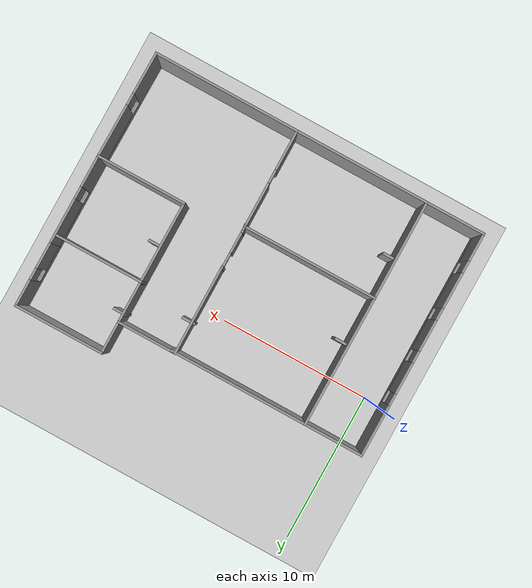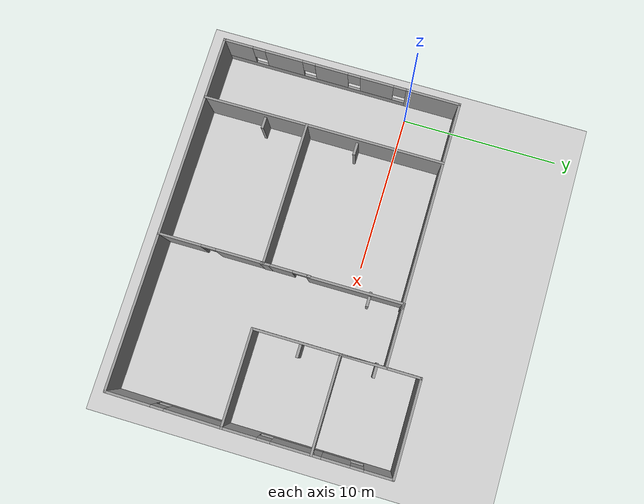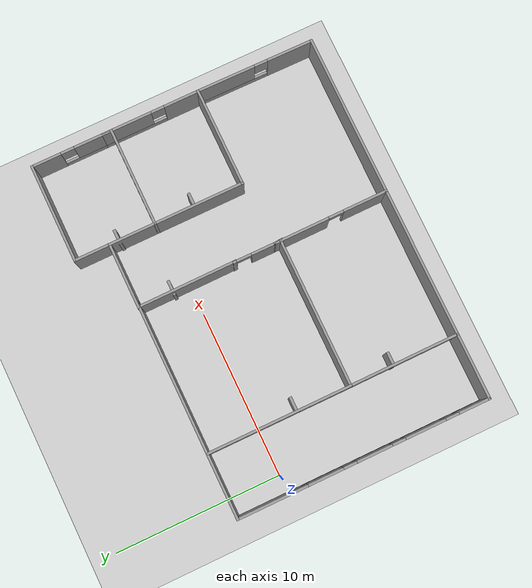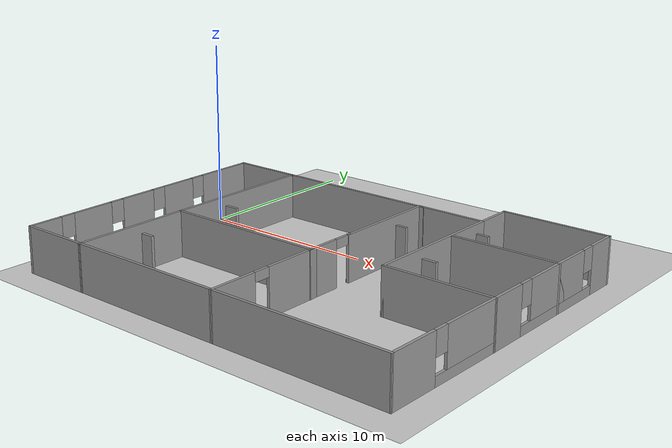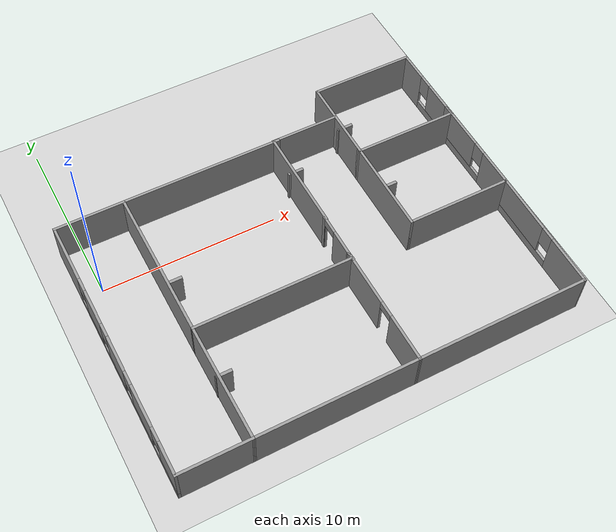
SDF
<sdf version="1.6">
 <world name="default">
  <light name="sun" type="directional">
   <pose>0 0 10 0 -0 0</pose>
   <diffuse>0.8 0.8 0.8 1</diffuse>
   <specular>0.2 0.2 0.2 1</specular>
   <attenuation>
    <range>1000</range>
    <constant>0.9</constant>
    <linear>0.01</linear>
    <quadratic>0.001</quadratic>
   </attenuation>
   <direction>-0.5 0.1 -0.9</direction>
   <spot><inner_angle>0</inner_angle><outer_angle>0</outer_angle><falloff>0</falloff></spot>
  </light>
  <model name="ground_plane">
   <static>1</static>
   <link name="link">
    <collision name="collision">
     <geometry><plane><normal>0 0 1</normal><size>100 100</size></plane></geometry>
     <surface><friction><ode><mu>100</mu><mu2>50</mu2></ode></friction></surface>
    </collision>
    <visual name="visual">
     <cast_shadows>0</cast_shadows>
     <geometry><plane><normal>0 0 1</normal><size>100 100</size></plane></geometry>
     <material>
      <script><uri>file://media/materials/scripts/gazebo.material</uri><name>Gazebo/Grey</name></script>
     </material>
    </visual>
   </link>
  </model>
  <gravity>0 0 -9.8</gravity>
  <magnetic_field>6e-06 2.3e-05 -4.2e-05</magnetic_field>
  <atmosphere type="adiabatic"/>
  <physics type="ode">
   <max_step_size>0.001</max_step_size>
   <real_time_factor>1</real_time_factor>
   <real_time_update_rate>1000</real_time_update_rate>
  </physics>
  <scene><ambient>0.4 0.4 0.4 1</ambient><background>0.7 0.7 0.7 1</background><shadows>1</shadows></scene>
  <spherical_coordinates>
   <surface_model>EARTH_WGS84</surface_model>
   <latitude_deg>0</latitude_deg>
   <longitude_deg>0</longitude_deg>
   <elevation>0</elevation>
   <heading_deg>0</heading_deg>
  </spherical_coordinates>
  <model name="schema_casa_v1">
   <pose>10.1241 -3.43463 0 0 -0 0</pose>
   <link name="Door_2">
    <collision name="Door_2_Collision">
     <geometry><box><size>0.9 0.17 2</size></box></geometry>
     <pose>0 0 1 0 -0 0</pose>
    </collision>
    <visual name="Door_2_Visual">
     <pose>0 0 1 0 -0 0</pose>
     <geometry><box><size>0.9 0.17 2</size></box></geometry>
     <material>
      <script><uri>file://media/materials/scripts/gazebo.material</uri><name>Gazebo/Grey</name></script>
     </material>
    </visual>
    <pose>1.76838 4.4534 0 0 -0 0</pose>
   </link>
   <link name="Door_3">
    <collision name="Door_3_Collision">
     <geometry><box><size>0.9 0.17 2</size></box></geometry>
     <pose>0 0 1 0 -0 0</pose>
    </collision>
    <visual name="Door_3_Visual">
     <pose>0 0 1 0 -0 0</pose>
     <geometry><box><size>0.9 0.17 2</size></box></geometry>
     <material>
      <script><uri>file://media/materials/scripts/gazebo.material</uri><name>Gazebo/Grey</name></script>
     </material>
    </visual>
    <pose>5.66182 5.97427 0 0 -0 0</pose>
   </link>
   <link name="Door_4">
    <collision name="Door_4_Collision">
     <geometry><box><size>0.9 0.17 2</size></box></geometry>
     <pose>0 0 1 0 -0 0</pose>
    </collision>
    <visual name="Door_4_Visual">
     <pose>0 0 1 0 -0 0</pose>
     <geometry><box><size>0.9 0.17 2</size></box></geometry>
     <material>
      <script><uri>file://media/materials/scripts/gazebo.material</uri><name>Gazebo/Grey</name></script>
     </material>
    </visual>
    <pose>5.78349 1.35081 0 0 -0 0</pose>
   </link>
   <link name="Door_5">
    <collision name="Door_5_Collision">
     <geometry><box><size>0.9 0.17 2</size></box></geometry>
     <pose>0 0 1 0 -0 0</pose>
    </collision>
    <visual name="Door_5_Visual">
     <pose>0 0 1 0 -0 0</pose>
     <geometry><box><size>0.9 0.17 2</size></box></geometry>
     <material>
      <script><uri>file://media/materials/scripts/gazebo.material</uri><name>Gazebo/Grey</name></script>
     </material>
    </visual>
    <pose>-6.93103 1.10747 0 0 -0 0</pose>
   </link>
   <link name="Door_6">
    <collision name="Door_6_Collision">
     <geometry><box><size>0.9 0.17 2</size></box></geometry>
     <pose>0 0 1 0 -0 0</pose>
    </collision>
    <visual name="Door_6_Visual">
     <pose>0 0 1 0 -0 0</pose>
     <geometry><box><size>0.9 0.17 2</size></box></geometry>
     <material>
      <script><uri>file://media/materials/scripts/gazebo.material</uri><name>Gazebo/Grey</name></script>
     </material>
    </visual>
    <pose>-6.99186 -4.79352 0 0 -0 0</pose>
   </link>
   <link name="Wall_0">
    <collision name="Wall_0_Collision">
     <geometry><box><size>0.580995 0.15 2.5</size></box></geometry>
     <pose>0 0 1.25 0 -0 0</pose>
    </collision>
    <visual name="Wall_0_Visual">
     <pose>0 0 1.25 0 -0 0</pose>
     <geometry><box><size>0.580995 0.15 2.5</size></box></geometry>
     <material>
      <script><uri>file://media/materials/scripts/gazebo.material</uri><name>Gazebo/Grey</name></script>
      <ambient>1 1 1 1</ambient>
     </material>
     <meta><layer>0</layer></meta>
    </visual>
    <pose>1.51476 -1.99505 0 0 -0 -1.50056</pose>
   </link>
   <link name="Wall_1">
    <pose>1.49964 -0.694278 0 0 -0 1.5708</pose>
    <visual name="Wall_1_Visual_0">
     <pose>-0.560805 0 1.25 0 -0 0</pose>
     <geometry><box><size>1.87839 0.15 2.5</size></box></geometry>
     <material>
      <script><uri>file://media/materials/scripts/gazebo.material</uri><name>Gazebo/Grey</name></script>
      <ambient>1 1 1 1</ambient>
     </material>
     <meta><layer>0</layer></meta>
    </visual>
    <collision name="Wall_1_Collision_0">
     <geometry><box><size>1.87839 0.15 2.5</size></box></geometry>
     <pose>-0.560805 0 1.25 0 -0 0</pose>
    </collision>
    <visual name="Wall_1_Visual_1">
     <pose>1.38919 0 1.25 0 -0 0</pose>
     <geometry><box><size>0.22161 0.15 2.5</size></box></geometry>
     <material>
      <script><uri>file://media/materials/scripts/gazebo.material</uri><name>Gazebo/Grey</name></script>
      <ambient>1 1 1 1</ambient>
     </material>
     <meta><layer>0</layer></meta>
    </visual>
    <collision name="Wall_1_Collision_1">
     <geometry><box><size>0.22161 0.15 2.5</size></box></geometry>
     <pose>1.38919 0 1.25 0 -0 0</pose>
    </collision>
    <visual name="Wall_1_Visual_2">
     <pose>0.82839 0 2.25 0 -0 0</pose>
     <geometry><box><size>0.9 0.15 0.5</size></box></geometry>
     <material>
      <script><uri>file://media/materials/scripts/gazebo.material</uri><name>Gazebo/Grey</name></script>
      <ambient>1 1 1 1</ambient>
     </material>
     <meta><layer>0</layer></meta>
    </visual>
    <collision name="Wall_1_Collision_2">
     <geometry><box><size>0.9 0.15 0.5</size></box></geometry>
     <pose>0.82839 0 2.25 0 -0 0</pose>
    </collision>
   </link>
   <link name="Wall_10">
    <collision name="Wall_10_Collision">
     <geometry><box><size>6 0.15 2.5</size></box></geometry>
     <pose>0 0 1.25 0 -0 0</pose>
    </collision>
    <visual name="Wall_10_Visual">
     <pose>0 0 1.25 0 -0 0</pose>
     <geometry><box><size>6 0.15 2.5</size></box></geometry>
     <material>
      <script><uri>file://media/materials/scripts/gazebo.material</uri><name>Gazebo/Grey</name></script>
      <ambient>1 1 1 1</ambient>
     </material>
     <meta><layer>0</layer></meta>
    </visual>
    <pose>8.27464 -1.58008 0 0 -0 0</pose>
   </link>
   <link name="Wall_11">
    <pose>11.1996 1.34492 0 0 -0 1.5708</pose>
    <visual name="Wall_11_Visual_0">
     <pose>-1.90997 0 1.25 0 -0 0</pose>
     <geometry><box><size>2.18005 0.15 2.5</size></box></geometry>
     <material>
      <script><uri>file://media/materials/scripts/gazebo.material</uri><name>Gazebo/Grey</name></script>
      <ambient>1 1 1 1</ambient>
     </material>
     <meta><layer>0</layer></meta>
    </visual>
    <collision name="Wall_11_Collision_0">
     <geometry><box><size>2.18005 0.15 2.5</size></box></geometry>
     <pose>-1.90997 0 1.25 0 -0 0</pose>
    </collision>
    <visual name="Wall_11_Visual_1">
     <pose>1.09003 0 0.25 0 -0 0</pose>
     <geometry><box><size>3.81995 0.15 0.5</size></box></geometry>
     <material>
      <script><uri>file://media/materials/scripts/gazebo.material</uri><name>Gazebo/Grey</name></script>
      <ambient>1 1 1 1</ambient>
     </material>
     <meta><layer>0</layer></meta>
    </visual>
    <collision name="Wall_11_Collision_1">
     <geometry><box><size>3.81995 0.15 0.5</size></box></geometry>
     <pose>1.09003 0 0.25 0 -0 0</pose>
    </collision>
    <visual name="Wall_11_Visual_2">
     <pose>1.49002 0 1.5 0 -0 0</pose>
     <geometry><box><size>3.01995 0.15 2</size></box></geometry>
     <material>
      <script><uri>file://media/materials/scripts/gazebo.material</uri><name>Gazebo/Grey</name></script>
      <ambient>1 1 1 1</ambient>
     </material>
     <meta><layer>0</layer></meta>
    </visual>
    <collision name="Wall_11_Collision_2">
     <geometry><box><size>3.01995 0.15 2</size></box></geometry>
     <pose>1.49002 0 1.5 0 -0 0</pose>
    </collision>
    <visual name="Wall_11_Visual_3">
     <pose>-0.41995 0 1.9 0 -0 0</pose>
     <geometry><box><size>0.8 0.15 1.2</size></box></geometry>
     <material>
      <script><uri>file://media/materials/scripts/gazebo.material</uri><name>Gazebo/Grey</name></script>
      <ambient>1 1 1 1</ambient>
     </material>
     <meta><layer>0</layer></meta>
    </visual>
    <collision name="Wall_11_Collision_3">
     <geometry><box><size>0.8 0.15 1.2</size></box></geometry>
     <pose>-0.41995 0 1.9 0 -0 0</pose>
    </collision>
   </link>
   <link name="Wall_2">
    <collision name="Wall_2_Collision">
     <geometry><box><size>6.03001 0.15 2.5</size></box></geometry>
     <pose>0 0 1.25 0 -0 0</pose>
    </collision>
    <visual name="Wall_2_Visual">
     <pose>0 0 1.25 0 -0 0</pose>
     <geometry><box><size>6.03001 0.15 2.5</size></box></geometry>
     <material>
      <script><uri>file://media/materials/scripts/gazebo.material</uri><name>Gazebo/Grey</name></script>
      <ambient>1 1 1 1</ambient>
     </material>
     <meta><layer>0</layer></meta>
    </visual>
    <pose>1.51476 3.57995 0 0 -0 1.57594</pose>
   </link>
   <link name="Wall_20">
    <pose>11.1656 -5.09964 0 0 -0 1.56113</pose>
    <visual name="Wall_20_Visual_0">
     <pose>-2.17903 0 1.25 0 -0 0</pose>
     <geometry><box><size>2.83139 0.15 2.5</size></box></geometry>
     <material>
      <script><uri>file://media/materials/scripts/gazebo.material</uri><name>Gazebo/Grey</name></script>
      <ambient>1 1 1 1</ambient>
     </material>
     <meta><layer>0</layer></meta>
    </visual>
    <collision name="Wall_20_Collision_0">
     <geometry><box><size>2.83139 0.15 2.5</size></box></geometry>
     <pose>-2.17903 0 1.25 0 -0 0</pose>
    </collision>
    <visual name="Wall_20_Visual_1">
     <pose>1.4157 0 0.25 0 -0 0</pose>
     <geometry><box><size>4.35805 0.15 0.5</size></box></geometry>
     <material>
      <script><uri>file://media/materials/scripts/gazebo.material</uri><name>Gazebo/Grey</name></script>
      <ambient>1 1 1 1</ambient>
     </material>
     <meta><layer>0</layer></meta>
    </visual>
    <collision name="Wall_20_Collision_1">
     <geometry><box><size>4.35805 0.15 0.5</size></box></geometry>
     <pose>1.4157 0 0.25 0 -0 0</pose>
    </collision>
    <visual name="Wall_20_Visual_2">
     <pose>1.8157 0 1.5 0 -0 0</pose>
     <geometry><box><size>3.55805 0.15 2</size></box></geometry>
     <material>
      <script><uri>file://media/materials/scripts/gazebo.material</uri><name>Gazebo/Grey</name></script>
      <ambient>1 1 1 1</ambient>
     </material>
     <meta><layer>0</layer></meta>
    </visual>
    <collision name="Wall_20_Collision_2">
     <geometry><box><size>3.55805 0.15 2</size></box></geometry>
     <pose>1.8157 0 1.5 0 -0 0</pose>
    </collision>
    <visual name="Wall_20_Visual_3">
     <pose>-0.363328 0 1.9 0 -0 0</pose>
     <geometry><box><size>0.8 0.15 1.2</size></box></geometry>
     <material>
      <script><uri>file://media/materials/scripts/gazebo.material</uri><name>Gazebo/Grey</name></script>
      <ambient>1 1 1 1</ambient>
     </material>
     <meta><layer>0</layer></meta>
    </visual>
    <collision name="Wall_20_Collision_3">
     <geometry><box><size>0.8 0.15 1.2</size></box></geometry>
     <pose>-0.363328 0 1.9 0 -0 0</pose>
    </collision>
   </link>
   <link name="Wall_22">
    <collision name="Wall_22_Collision">
     <geometry><box><size>9.75 0.15 2.5</size></box></geometry>
     <pose>0 0 1.25 0 -0 0</pose>
    </collision>
    <visual name="Wall_22_Visual">
     <pose>0 0 1.25 0 -0 0</pose>
     <geometry><box><size>9.75 0.15 2.5</size></box></geometry>
     <material>
      <script><uri>file://media/materials/scripts/gazebo.material</uri><name>Gazebo/Grey</name></script>
      <ambient>1 1 1 1</ambient>
     </material>
     <meta><layer>0</layer></meta>
    </visual>
    <pose>6.33158 -8.61919 0 0 -0 3.14159</pose>
   </link>
   <link name="Wall_23">
    <pose>1.51561 -5.36924 0 0 -0 1.57571</pose>
    <visual name="Wall_23_Visual_0">
     <pose>-1.96512 0 1.25 0 -0 0</pose>
     <geometry><box><size>2.71975 0.15 2.5</size></box></geometry>
     <material>
      <script><uri>file://media/materials/scripts/gazebo.material</uri><name>Gazebo/Grey</name></script>
      <ambient>1 1 1 1</ambient>
     </material>
     <meta><layer>0</layer></meta>
    </visual>
    <collision name="Wall_23_Collision_0">
     <geometry><box><size>2.71975 0.15 2.5</size></box></geometry>
     <pose>-1.96512 0 1.25 0 -0 0</pose>
    </collision>
    <visual name="Wall_23_Visual_1">
     <pose>1.80988 0 1.25 0 -0 0</pose>
     <geometry><box><size>3.03024 0.15 2.5</size></box></geometry>
     <material>
      <script><uri>file://media/materials/scripts/gazebo.material</uri><name>Gazebo/Grey</name></script>
      <ambient>1 1 1 1</ambient>
     </material>
     <meta><layer>0</layer></meta>
    </visual>
    <collision name="Wall_23_Collision_1">
     <geometry><box><size>3.03024 0.15 2.5</size></box></geometry>
     <pose>1.80988 0 1.25 0 -0 0</pose>
    </collision>
    <visual name="Wall_23_Visual_2">
     <pose>-0.155247 0 2.25 0 -0 0</pose>
     <geometry><box><size>0.9 0.15 0.5</size></box></geometry>
     <material>
      <script><uri>file://media/materials/scripts/gazebo.material</uri><name>Gazebo/Grey</name></script>
      <ambient>1 1 1 1</ambient>
     </material>
     <meta><layer>0</layer></meta>
    </visual>
    <collision name="Wall_23_Collision_2">
     <geometry><box><size>0.9 0.15 0.5</size></box></geometry>
     <pose>-0.155247 0 2.25 0 -0 0</pose>
    </collision>
   </link>
   <link name="Wall_24">
    <collision name="Wall_24_Collision">
     <geometry><box><size>9 0.15 2.5</size></box></geometry>
     <pose>0 0 1.25 0 -0 0</pose>
    </collision>
    <visual name="Wall_24_Visual">
     <pose>0 0 1.25 0 -0 0</pose>
     <geometry><box><size>9 0.15 2.5</size></box></geometry>
     <material>
      <script><uri>file://media/materials/scripts/gazebo.material</uri><name>Gazebo/Grey</name></script>
      <ambient>1 1 1 1</ambient>
     </material>
     <meta><layer>0</layer></meta>
    </visual>
    <pose>-2.92536 -2.11928 0 0 -0 3.14159</pose>
   </link>
   <link name="Wall_25">
    <collision name="Wall_25_Collision">
     <geometry><box><size>8.75 0.15 2.5</size></box></geometry>
     <pose>0 0 1.25 0 -0 0</pose>
    </collision>
    <visual name="Wall_25_Visual">
     <pose>0 0 1.25 0 -0 0</pose>
     <geometry><box><size>8.75 0.15 2.5</size></box></geometry>
     <material>
      <script><uri>file://media/materials/scripts/gazebo.material</uri><name>Gazebo/Grey</name></script>
      <ambient>1 1 1 1</ambient>
     </material>
     <meta><layer>0</layer></meta>
    </visual>
    <pose>-7.35036 2.18072 0 0 -0 1.5708</pose>
   </link>
   <link name="Wall_26">
    <collision name="Wall_26_Collision">
     <geometry><box><size>9.25 0.15 2.5</size></box></geometry>
     <pose>0 0 1.25 0 -0 0</pose>
    </collision>
    <visual name="Wall_26_Visual">
     <pose>0 0 1.25 0 -0 0</pose>
     <geometry><box><size>9.25 0.15 2.5</size></box></geometry>
     <material>
      <script><uri>file://media/materials/scripts/gazebo.material</uri><name>Gazebo/Grey</name></script>
      <ambient>1 1 1 1</ambient>
     </material>
     <meta><layer>0</layer></meta>
    </visual>
    <pose>-2.80036 6.48072 0 0 -0 0</pose>
   </link>
   <link name="Wall_28">
    <collision name="Wall_28_Collision">
     <geometry><box><size>9 0.15 2.5</size></box></geometry>
     <pose>0 0 1.25 0 -0 0</pose>
    </collision>
    <visual name="Wall_28_Visual">
     <pose>0 0 1.25 0 -0 0</pose>
     <geometry><box><size>9 0.15 2.5</size></box></geometry>
     <material>
      <script><uri>file://media/materials/scripts/gazebo.material</uri><name>Gazebo/Grey</name></script>
      <ambient>1 1 1 1</ambient>
     </material>
     <meta><layer>0</layer></meta>
    </visual>
    <pose>-2.89342 -8.61919 0 0 -0 3.14159</pose>
   </link>
   <link name="Wall_29">
    <collision name="Wall_29_Collision">
     <geometry><box><size>6.65 0.15 2.5</size></box></geometry>
     <pose>0 0 1.25 0 -0 0</pose>
    </collision>
    <visual name="Wall_29_Visual">
     <pose>0 0 1.25 0 -0 0</pose>
     <geometry><box><size>6.65 0.15 2.5</size></box></geometry>
     <material>
      <script><uri>file://media/materials/scripts/gazebo.material</uri><name>Gazebo/Grey</name></script>
      <ambient>1 1 1 1</ambient>
     </material>
     <meta><layer>0</layer></meta>
    </visual>
    <pose>-7.33439 -5.36924 0 0 -0 1.57571</pose>
   </link>
   <link name="Wall_3">
    <collision name="Wall_3_Collision">
     <geometry><box><size>4 0.15 2.5</size></box></geometry>
     <pose>0 0 1.25 0 -0 0</pose>
    </collision>
    <visual name="Wall_3_Visual">
     <pose>0 0 1.25 0 -0 0</pose>
     <geometry><box><size>4 0.15 2.5</size></box></geometry>
     <material>
      <script><uri>file://media/materials/scripts/gazebo.material</uri><name>Gazebo/Grey</name></script>
      <ambient>1 1 1 1</ambient>
     </material>
     <meta><layer>0</layer></meta>
    </visual>
    <pose>3.42464 6.51992 0 0 -0 0</pose>
   </link>
   <link name="Wall_31">
    <collision name="Wall_31_Collision">
     <geometry><box><size>4 0.15 2.5</size></box></geometry>
     <pose>0 0 1.25 0 -0 0</pose>
    </collision>
    <visual name="Wall_31_Visual">
     <pose>0 0 1.25 0 -0 0</pose>
     <geometry><box><size>4 0.15 2.5</size></box></geometry>
     <material>
      <script><uri>file://media/materials/scripts/gazebo.material</uri><name>Gazebo/Grey</name></script>
      <ambient>1 1 1 1</ambient>
     </material>
     <meta><layer>0</layer></meta>
    </visual>
    <pose>-9.27536 6.48072 0 0 -0 3.14159</pose>
   </link>
   <link name="Wall_32">
    <pose>-11.2004 -1.06928 0 0 -0 -1.5708</pose>
    <visual name="Wall_32_Visual_0">
     <pose>-5.89173 0 1.25 0 -0 0</pose>
     <geometry><box><size>3.46654 0.15 2.5</size></box></geometry>
     <material>
      <script><uri>file://media/materials/scripts/gazebo.material</uri><name>Gazebo/Grey</name></script>
      <ambient>1 1 1 1</ambient>
     </material>
     <meta><layer>0</layer></meta>
    </visual>
    <collision name="Wall_32_Collision_0">
     <geometry><box><size>3.46654 0.15 2.5</size></box></geometry>
     <pose>-5.89173 0 1.25 0 -0 0</pose>
    </collision>
    <visual name="Wall_32_Visual_1">
     <pose>1.73327 0 0.25 0 -0 0</pose>
     <geometry><box><size>11.7835 0.15 0.5</size></box></geometry>
     <material>
      <script><uri>file://media/materials/scripts/gazebo.material</uri><name>Gazebo/Grey</name></script>
      <ambient>1 1 1 1</ambient>
     </material>
     <meta><layer>0</layer></meta>
    </visual>
    <collision name="Wall_32_Collision_1">
     <geometry><box><size>11.7835 0.15 0.5</size></box></geometry>
     <pose>1.73327 0 0.25 0 -0 0</pose>
    </collision>
    <visual name="Wall_32_Visual_2">
     <pose>-2.29842 0 1.5 0 -0 0</pose>
     <geometry><box><size>2.12008 0.15 2</size></box></geometry>
     <material>
      <script><uri>file://media/materials/scripts/gazebo.material</uri><name>Gazebo/Grey</name></script>
      <ambient>1 1 1 1</ambient>
     </material>
     <meta><layer>0</layer></meta>
    </visual>
    <collision name="Wall_32_Collision_2">
     <geometry><box><size>2.12008 0.15 2</size></box></geometry>
     <pose>-2.29842 0 1.5 0 -0 0</pose>
    </collision>
    <visual name="Wall_32_Visual_3">
     <pose>0.62166 0 1.5 0 -0 0</pose>
     <geometry><box><size>2.12008 0.15 2</size></box></geometry>
     <material>
      <script><uri>file://media/materials/scripts/gazebo.material</uri><name>Gazebo/Grey</name></script>
      <ambient>1 1 1 1</ambient>
     </material>
     <meta><layer>0</layer></meta>
    </visual>
    <collision name="Wall_32_Collision_3">
     <geometry><box><size>2.12008 0.15 2</size></box></geometry>
     <pose>0.62166 0 1.5 0 -0 0</pose>
    </collision>
    <visual name="Wall_32_Visual_4">
     <pose>3.69383 0 1.5 0 -0 0</pose>
     <geometry><box><size>2.42426 0.15 2</size></box></geometry>
     <material>
      <script><uri>file://media/materials/scripts/gazebo.material</uri><name>Gazebo/Grey</name></script>
      <ambient>1 1 1 1</ambient>
     </material>
     <meta><layer>0</layer></meta>
    </visual>
    <collision name="Wall_32_Collision_4">
     <geometry><box><size>2.42426 0.15 2</size></box></geometry>
     <pose>3.69383 0 1.5 0 -0 0</pose>
    </collision>
    <visual name="Wall_32_Visual_5">
     <pose>6.66548 0 1.5 0 -0 0</pose>
     <geometry><box><size>1.91905 0.15 2</size></box></geometry>
     <material>
      <script><uri>file://media/materials/scripts/gazebo.material</uri><name>Gazebo/Grey</name></script>
      <ambient>1 1 1 1</ambient>
     </material>
     <meta><layer>0</layer></meta>
    </visual>
    <collision name="Wall_32_Collision_5">
     <geometry><box><size>1.91905 0.15 2</size></box></geometry>
     <pose>6.66548 0 1.5 0 -0 0</pose>
    </collision>
    <visual name="Wall_32_Visual_6">
     <pose>-3.75846 0 1.9 0 -0 0</pose>
     <geometry><box><size>0.8 0.15 1.2</size></box></geometry>
     <material>
      <script><uri>file://media/materials/scripts/gazebo.material</uri><name>Gazebo/Grey</name></script>
      <ambient>1 1 1 1</ambient>
     </material>
     <meta><layer>0</layer></meta>
    </visual>
    <collision name="Wall_32_Collision_6">
     <geometry><box><size>0.8 0.15 1.2</size></box></geometry>
     <pose>-3.75846 0 1.9 0 -0 0</pose>
    </collision>
    <visual name="Wall_32_Visual_7">
     <pose>-0.83838 0 1.9 0 -0 0</pose>
     <geometry><box><size>0.8 0.15 1.2</size></box></geometry>
     <material>
      <script><uri>file://media/materials/scripts/gazebo.material</uri><name>Gazebo/Grey</name></script>
      <ambient>1 1 1 1</ambient>
     </material>
     <meta><layer>0</layer></meta>
    </visual>
    <collision name="Wall_32_Collision_7">
     <geometry><box><size>0.8 0.15 1.2</size></box></geometry>
     <pose>-0.83838 0 1.9 0 -0 0</pose>
    </collision>
    <visual name="Wall_32_Visual_8">
     <pose>2.0817 0 1.9 0 -0 0</pose>
     <geometry><box><size>0.8 0.15 1.2</size></box></geometry>
     <material>
      <script><uri>file://media/materials/scripts/gazebo.material</uri><name>Gazebo/Grey</name></script>
      <ambient>1 1 1 1</ambient>
     </material>
     <meta><layer>0</layer></meta>
    </visual>
    <collision name="Wall_32_Collision_8">
     <geometry><box><size>0.8 0.15 1.2</size></box></geometry>
     <pose>2.0817 0 1.9 0 -0 0</pose>
    </collision>
    <visual name="Wall_32_Visual_9">
     <pose>5.30595 0 1.9 0 -0 0</pose>
     <geometry><box><size>0.8 0.15 1.2</size></box></geometry>
     <material>
      <script><uri>file://media/materials/scripts/gazebo.material</uri><name>Gazebo/Grey</name></script>
      <ambient>1 1 1 1</ambient>
     </material>
     <meta><layer>0</layer></meta>
    </visual>
    <collision name="Wall_32_Collision_9">
     <geometry><box><size>0.8 0.15 1.2</size></box></geometry>
     <pose>5.30595 0 1.9 0 -0 0</pose>
    </collision>
   </link>
   <link name="Wall_33">
    <collision name="Wall_33_Collision">
     <geometry><box><size>4.03194 0.15 2.5</size></box></geometry>
     <pose>0 0 1.25 0 -0 0</pose>
    </collision>
    <visual name="Wall_33_Visual">
     <pose>0 0 1.25 0 -0 0</pose>
     <geometry><box><size>4.03194 0.15 2.5</size></box></geometry>
     <material>
      <script><uri>file://media/materials/scripts/gazebo.material</uri><name>Gazebo/Grey</name></script>
      <ambient>1 1 1 1</ambient>
     </material>
     <meta><layer>0</layer></meta>
    </visual>
    <pose>-9.25939 -8.61924 0 0 -0 2.1e-05</pose>
   </link>
   <link name="Wall_4">
    <collision name="Wall_4_Collision">
     <geometry><box><size>2.25 0.15 2.5</size></box></geometry>
     <pose>0 0 1.25 0 -0 0</pose>
    </collision>
    <visual name="Wall_4_Visual">
     <pose>0 0 1.25 0 -0 0</pose>
     <geometry><box><size>2.25 0.15 2.5</size></box></geometry>
     <material>
      <script><uri>file://media/materials/scripts/gazebo.material</uri><name>Gazebo/Grey</name></script>
      <ambient>1 1 1 1</ambient>
     </material>
     <meta><layer>0</layer></meta>
    </visual>
    <pose>5.34964 7.56992 0 0 -0 1.5708</pose>
   </link>
   <link name="Wall_5">
    <collision name="Wall_5_Collision">
     <geometry><box><size>6 0.15 2.5</size></box></geometry>
     <pose>0 0 1.25 0 -0 0</pose>
    </collision>
    <visual name="Wall_5_Visual">
     <pose>0 0 1.25 0 -0 0</pose>
     <geometry><box><size>6 0.15 2.5</size></box></geometry>
     <material>
      <script><uri>file://media/materials/scripts/gazebo.material</uri><name>Gazebo/Grey</name></script>
      <ambient>1 1 1 1</ambient>
     </material>
     <meta><layer>0</layer></meta>
    </visual>
    <pose>8.27464 8.61992 0 0 -0 0</pose>
   </link>
   <link name="Wall_6">
    <pose>11.1996 6.19492 0 0 -0 -1.5708</pose>
    <visual name="Wall_6_Visual_0">
     <pose>-1.58302 0 1.25 0 -0 0</pose>
     <geometry><box><size>1.83396 0.15 2.5</size></box></geometry>
     <material>
      <script><uri>file://media/materials/scripts/gazebo.material</uri><name>Gazebo/Grey</name></script>
      <ambient>1 1 1 1</ambient>
     </material>
     <meta><layer>0</layer></meta>
    </visual>
    <collision name="Wall_6_Collision_0">
     <geometry><box><size>1.83396 0.15 2.5</size></box></geometry>
     <pose>-1.58302 0 1.25 0 -0 0</pose>
    </collision>
    <visual name="Wall_6_Visual_1">
     <pose>0.916982 0 0.25 0 -0 0</pose>
     <geometry><box><size>3.16604 0.15 0.5</size></box></geometry>
     <material>
      <script><uri>file://media/materials/scripts/gazebo.material</uri><name>Gazebo/Grey</name></script>
      <ambient>1 1 1 1</ambient>
     </material>
     <meta><layer>0</layer></meta>
    </visual>
    <collision name="Wall_6_Collision_1">
     <geometry><box><size>3.16604 0.15 0.5</size></box></geometry>
     <pose>0.916982 0 0.25 0 -0 0</pose>
    </collision>
    <visual name="Wall_6_Visual_2">
     <pose>1.31698 0 1.5 0 -0 0</pose>
     <geometry><box><size>2.36604 0.15 2</size></box></geometry>
     <material>
      <script><uri>file://media/materials/scripts/gazebo.material</uri><name>Gazebo/Grey</name></script>
      <ambient>1 1 1 1</ambient>
     </material>
     <meta><layer>0</layer></meta>
    </visual>
    <collision name="Wall_6_Collision_2">
     <geometry><box><size>2.36604 0.15 2</size></box></geometry>
     <pose>1.31698 0 1.5 0 -0 0</pose>
    </collision>
    <visual name="Wall_6_Visual_3">
     <pose>-0.266036 0 1.9 0 -0 0</pose>
     <geometry><box><size>0.8 0.15 1.2</size></box></geometry>
     <material>
      <script><uri>file://media/materials/scripts/gazebo.material</uri><name>Gazebo/Grey</name></script>
      <ambient>1 1 1 1</ambient>
     </material>
     <meta><layer>0</layer></meta>
    </visual>
    <collision name="Wall_6_Collision_3">
     <geometry><box><size>0.8 0.15 1.2</size></box></geometry>
     <pose>-0.266036 0 1.9 0 -0 0</pose>
    </collision>
   </link>
   <link name="Wall_7">
    <collision name="Wall_7_Collision">
     <geometry><box><size>6 0.15 2.5</size></box></geometry>
     <pose>0 0 1.25 0 -0 0</pose>
    </collision>
    <visual name="Wall_7_Visual">
     <pose>0 0 1.25 0 -0 0</pose>
     <geometry><box><size>6 0.15 2.5</size></box></geometry>
     <material>
      <script><uri>file://media/materials/scripts/gazebo.material</uri><name>Gazebo/Grey</name></script>
      <ambient>1 1 1 1</ambient>
     </material>
     <meta><layer>0</layer></meta>
    </visual>
    <pose>8.27464 3.76992 0 0 -0 3.14159</pose>
   </link>
   <link name="Wall_8">
    <collision name="Wall_8_Collision">
     <geometry><box><size>2.9 0.15 2.5</size></box></geometry>
     <pose>0 0 1.25 0 -0 0</pose>
    </collision>
    <visual name="Wall_8_Visual">
     <pose>0 0 1.25 0 -0 0</pose>
     <geometry><box><size>2.9 0.15 2.5</size></box></geometry>
     <material>
      <script><uri>file://media/materials/scripts/gazebo.material</uri><name>Gazebo/Grey</name></script>
      <ambient>1 1 1 1</ambient>
     </material>
     <meta><layer>0</layer></meta>
    </visual>
    <pose>5.34964 5.14492 0 0 -0 1.5708</pose>
   </link>
   <link name="Wall_9">
    <collision name="Wall_9_Collision">
     <geometry><box><size>8.25 0.15 2.5</size></box></geometry>
     <pose>0 0 1.25 0 -0 0</pose>
    </collision>
    <visual name="Wall_9_Visual">
     <pose>0 0 1.25 0 -0 0</pose>
     <geometry><box><size>8.25 0.15 2.5</size></box></geometry>
     <material>
      <script><uri>file://media/materials/scripts/gazebo.material</uri><name>Gazebo/Grey</name></script>
      <ambient>1 1 1 1</ambient>
     </material>
     <meta><layer>0</layer></meta>
    </visual>
    <pose>5.34964 2.46992 0 0 -0 -1.5708</pose>
   </link>
   <static>1</static>
  </model>
 </world>
</sdf>
